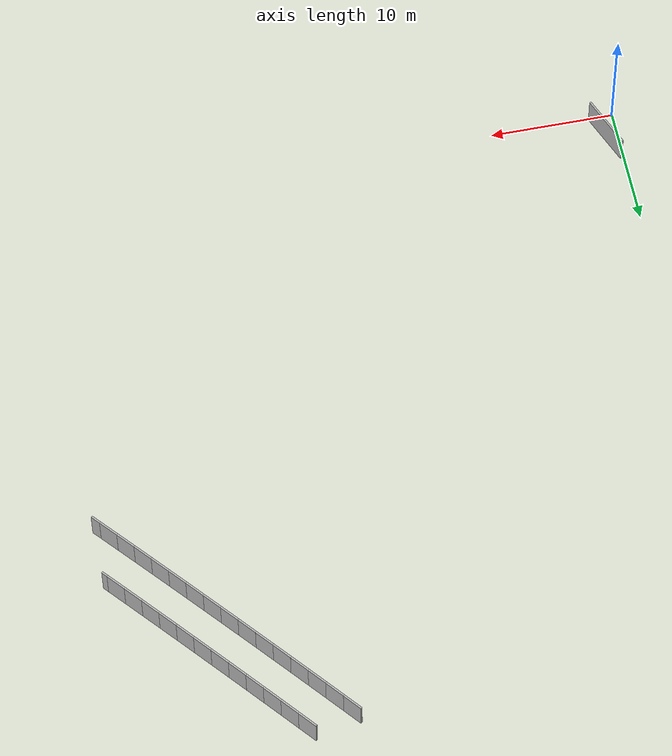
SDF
<?xml version="1.0" ?>
<sdf version="1.6">
  <model name="sps_4923">
    <pose frame="">0 0 0 0 -0 0</pose>
    <static>1</static>
    <self_collide>0</self_collide>
    <allow_auto_disable>0</allow_auto_disable>
    <link name="Wall6439">
      <kinematic>0</kinematic>
      <gravity>1</gravity>
      <self_collide>0</self_collide>
      <collision name="collision">
        <geometry>
          <box>
            <size>4.526 0.15 2.5</size>
          </box>
        </geometry>
        <pose frame="">0 0 0 0 -0 0</pose>
      </collision>
      <visual name="visual">
        <geometry>
          <box>
            <size>4.526 0.15 2.5</size>
          </box>
        </geometry>
        <pose frame="">0 0 0 0 -0 0</pose>
        <cast_shadows>1</cast_shadows>
        <transparency>0.0</transparency>
      </visual>
      <pose frame="">1.07574 2.0927 1.25 0 0 -1.18656</pose>
    </link>
    <link name="Wall6572">
      <kinematic>0</kinematic>
      <gravity>1</gravity>
      <self_collide>0</self_collide>
      <collision name="collision">
        <geometry>
          <box>
            <size>1.68608 0.15 2.5</size>
          </box>
        </geometry>
        <pose frame="">0 0 0 0 -0 0</pose>
      </collision>
      <visual name="visual">
        <geometry>
          <box>
            <size>1.68608 0.15 2.5</size>
          </box>
        </geometry>
        <pose frame="">0 0 0 0 -0 0</pose>
        <cast_shadows>1</cast_shadows>
        <transparency>0.0</transparency>
      </visual>
      <pose frame="">31.2801 48.8005 1.25 0 0 -0.878218</pose>
    </link>
    <link name="Wall6573">
      <kinematic>0</kinematic>
      <gravity>1</gravity>
      <self_collide>0</self_collide>
      <collision name="collision">
        <geometry>
          <box>
            <size>1.68623 0.15 2.5</size>
          </box>
        </geometry>
        <pose frame="">0 0 0 0 -0 0</pose>
      </collision>
      <visual name="visual">
        <geometry>
          <box>
            <size>1.68623 0.15 2.5</size>
          </box>
        </geometry>
        <pose frame="">0 0 0 0 -0 0</pose>
        <cast_shadows>1</cast_shadows>
        <transparency>0.0</transparency>
      </visual>
      <pose frame="">32.358 47.5038 1.25 0 0 -0.87641</pose>
    </link>
    <link name="Wall6574">
      <kinematic>0</kinematic>
      <gravity>1</gravity>
      <self_collide>0</self_collide>
      <collision name="collision">
        <geometry>
          <box>
            <size>1.68624 0.15 2.5</size>
          </box>
        </geometry>
        <pose frame="">0 0 0 0 -0 0</pose>
      </collision>
      <visual name="visual">
        <geometry>
          <box>
            <size>1.68624 0.15 2.5</size>
          </box>
        </geometry>
        <pose frame="">0 0 0 0 -0 0</pose>
        <cast_shadows>1</cast_shadows>
        <transparency>0.0</transparency>
      </visual>
      <pose frame="">33.4381 46.2089 1.25 0 0 -0.874765</pose>
    </link>
    <link name="Wall6575">
      <kinematic>0</kinematic>
      <gravity>1</gravity>
      <self_collide>0</self_collide>
      <collision name="collision">
        <geometry>
          <box>
            <size>1.68629 0.15 2.5</size>
          </box>
        </geometry>
        <pose frame="">0 0 0 0 -0 0</pose>
      </collision>
      <visual name="visual">
        <geometry>
          <box>
            <size>1.68629 0.15 2.5</size>
          </box>
        </geometry>
        <pose frame="">0 0 0 0 -0 0</pose>
        <cast_shadows>1</cast_shadows>
        <transparency>0.0</transparency>
      </visual>
      <pose frame="">34.5203 44.9158 1.25 0 0 -0.873092</pose>
    </link>
    <link name="Wall6576">
      <kinematic>0</kinematic>
      <gravity>1</gravity>
      <self_collide>0</self_collide>
      <collision name="collision">
        <geometry>
          <box>
            <size>1.68629 0.15 2.5</size>
          </box>
        </geometry>
        <pose frame="">0 0 0 0 -0 0</pose>
      </collision>
      <visual name="visual">
        <geometry>
          <box>
            <size>1.68629 0.15 2.5</size>
          </box>
        </geometry>
        <pose frame="">0 0 0 0 -0 0</pose>
        <cast_shadows>1</cast_shadows>
        <transparency>0.0</transparency>
      </visual>
      <pose frame="">35.6049 43.6245 1.25 0 0 -0.871345</pose>
    </link>
    <link name="Wall6577">
      <kinematic>0</kinematic>
      <gravity>1</gravity>
      <self_collide>0</self_collide>
      <collision name="collision">
        <geometry>
          <box>
            <size>1.68622 0.15 2.5</size>
          </box>
        </geometry>
        <pose frame="">0 0 0 0 -0 0</pose>
      </collision>
      <visual name="visual">
        <geometry>
          <box>
            <size>1.68622 0.15 2.5</size>
          </box>
        </geometry>
        <pose frame="">0 0 0 0 -0 0</pose>
        <cast_shadows>1</cast_shadows>
        <transparency>0.0</transparency>
      </visual>
      <pose frame="">36.6916 42.3351 1.25 0 0 -0.869653</pose>
    </link>
    <link name="Wall6578">
      <kinematic>0</kinematic>
      <gravity>1</gravity>
      <self_collide>0</self_collide>
      <collision name="collision">
        <geometry>
          <box>
            <size>1.6863 0.15 2.5</size>
          </box>
        </geometry>
        <pose frame="">0 0 0 0 -0 0</pose>
      </collision>
      <visual name="visual">
        <geometry>
          <box>
            <size>1.6863 0.15 2.5</size>
          </box>
        </geometry>
        <pose frame="">0 0 0 0 -0 0</pose>
        <cast_shadows>1</cast_shadows>
        <transparency>0.0</transparency>
      </visual>
      <pose frame="">37.7804 41.0475 1.25 0 0 -0.868082</pose>
    </link>
    <link name="Wall6579">
      <kinematic>0</kinematic>
      <gravity>1</gravity>
      <self_collide>0</self_collide>
      <collision name="collision">
        <geometry>
          <box>
            <size>1.68615 0.15 2.5</size>
          </box>
        </geometry>
        <pose frame="">0 0 0 0 -0 0</pose>
      </collision>
      <visual name="visual">
        <geometry>
          <box>
            <size>1.68615 0.15 2.5</size>
          </box>
        </geometry>
        <pose frame="">0 0 0 0 -0 0</pose>
        <cast_shadows>1</cast_shadows>
        <transparency>0.0</transparency>
      </visual>
      <pose frame="">38.8713 39.7617 1.25 0 0 -0.866344</pose>
    </link>
    <link name="Wall6580">
      <kinematic>0</kinematic>
      <gravity>1</gravity>
      <self_collide>0</self_collide>
      <collision name="collision">
        <geometry>
          <box>
            <size>1.68592 0.15 2.5</size>
          </box>
        </geometry>
        <pose frame="">0 0 0 0 -0 0</pose>
      </collision>
      <visual name="visual">
        <geometry>
          <box>
            <size>1.68592 0.15 2.5</size>
          </box>
        </geometry>
        <pose frame="">0 0 0 0 -0 0</pose>
        <cast_shadows>1</cast_shadows>
        <transparency>0.0</transparency>
      </visual>
      <pose frame="">39.9643 38.4779 1.25 0 0 -0.86466</pose>
    </link>
    <link name="Wall6581">
      <kinematic>0</kinematic>
      <gravity>1</gravity>
      <self_collide>0</self_collide>
      <collision name="collision">
        <geometry>
          <box>
            <size>1.68626 0.15 2.5</size>
          </box>
        </geometry>
        <pose frame="">0 0 0 0 -0 0</pose>
      </collision>
      <visual name="visual">
        <geometry>
          <box>
            <size>1.68626 0.15 2.5</size>
          </box>
        </geometry>
        <pose frame="">0 0 0 0 -0 0</pose>
        <cast_shadows>1</cast_shadows>
        <transparency>0.0</transparency>
      </visual>
      <pose frame="">41.0594 37.1959 1.25 0 0 -0.862975</pose>
    </link>
    <link name="Wall6582">
      <kinematic>0</kinematic>
      <gravity>1</gravity>
      <self_collide>0</self_collide>
      <collision name="collision">
        <geometry>
          <box>
            <size>1.68613 0.15 2.5</size>
          </box>
        </geometry>
        <pose frame="">0 0 0 0 -0 0</pose>
      </collision>
      <visual name="visual">
        <geometry>
          <box>
            <size>1.68613 0.15 2.5</size>
          </box>
        </geometry>
        <pose frame="">0 0 0 0 -0 0</pose>
        <cast_shadows>1</cast_shadows>
        <transparency>0.0</transparency>
      </visual>
      <pose frame="">42.1569 35.9157 1.25 0 0 -0.861287</pose>
    </link>
    <link name="Wall6583">
      <kinematic>0</kinematic>
      <gravity>1</gravity>
      <self_collide>0</self_collide>
      <collision name="collision">
        <geometry>
          <box>
            <size>1.68614 0.15 2.5</size>
          </box>
        </geometry>
        <pose frame="">0 0 0 0 -0 0</pose>
      </collision>
      <visual name="visual">
        <geometry>
          <box>
            <size>1.68614 0.15 2.5</size>
          </box>
        </geometry>
        <pose frame="">0 0 0 0 -0 0</pose>
        <cast_shadows>1</cast_shadows>
        <transparency>0.0</transparency>
      </visual>
      <pose frame="">43.2564 34.6374 1.25 0 0 -0.859618</pose>
    </link>
    <link name="Wall6584">
      <kinematic>0</kinematic>
      <gravity>1</gravity>
      <self_collide>0</self_collide>
      <collision name="collision">
        <geometry>
          <box>
            <size>1.68632 0.15 2.5</size>
          </box>
        </geometry>
        <pose frame="">0 0 0 0 -0 0</pose>
      </collision>
      <visual name="visual">
        <geometry>
          <box>
            <size>1.68632 0.15 2.5</size>
          </box>
        </geometry>
        <pose frame="">0 0 0 0 -0 0</pose>
        <cast_shadows>1</cast_shadows>
        <transparency>0.0</transparency>
      </visual>
      <pose frame="">44.3581 33.3608 1.25 0 0 -0.857993</pose>
    </link>
    <link name="Wall6585">
      <kinematic>0</kinematic>
      <gravity>1</gravity>
      <self_collide>0</self_collide>
      <collision name="collision">
        <geometry>
          <box>
            <size>1.68629 0.15 2.5</size>
          </box>
        </geometry>
        <pose frame="">0 0 0 0 -0 0</pose>
      </collision>
      <visual name="visual">
        <geometry>
          <box>
            <size>1.68629 0.15 2.5</size>
          </box>
        </geometry>
        <pose frame="">0 0 0 0 -0 0</pose>
        <cast_shadows>1</cast_shadows>
        <transparency>0.0</transparency>
      </visual>
      <pose frame="">45.4619 32.086 1.25 0 0 -0.85625</pose>
    </link>
    <link name="Wall6586">
      <kinematic>0</kinematic>
      <gravity>1</gravity>
      <self_collide>0</self_collide>
      <collision name="collision">
        <geometry>
          <box>
            <size>1.68607 0.15 2.5</size>
          </box>
        </geometry>
        <pose frame="">0 0 0 0 -0 0</pose>
      </collision>
      <visual name="visual">
        <geometry>
          <box>
            <size>1.68607 0.15 2.5</size>
          </box>
        </geometry>
        <pose frame="">0 0 0 0 -0 0</pose>
        <cast_shadows>1</cast_shadows>
        <transparency>0.0</transparency>
      </visual>
      <pose frame="">46.5682 30.8135 1.25 0 0 -0.854078</pose>
    </link>
    <link name="Wall6587">
      <kinematic>0</kinematic>
      <gravity>1</gravity>
      <self_collide>0</self_collide>
      <collision name="collision">
        <geometry>
          <box>
            <size>0.835422 0.15 2.5</size>
          </box>
        </geometry>
        <pose frame="">0 0 0 0 -0 0</pose>
      </collision>
      <visual name="visual">
        <geometry>
          <box>
            <size>0.835422 0.15 2.5</size>
          </box>
        </geometry>
        <pose frame="">0 0 0 0 -0 0</pose>
        <cast_shadows>1</cast_shadows>
        <transparency>0.0</transparency>
      </visual>
      <pose frame="">47.3968 29.8633 1.25 0 0 -0.85276</pose>
    </link>
    <link name="Wall9156">
      <kinematic>0</kinematic>
      <gravity>1</gravity>
      <self_collide>0</self_collide>
      <collision name="collision">
        <geometry>
          <box>
            <size>0.523454 0.15 2.5</size>
          </box>
        </geometry>
        <pose frame="">0 0 0 0 -0 0</pose>
      </collision>
      <visual name="visual">
        <geometry>
          <box>
            <size>0.523454 0.15 2.5</size>
          </box>
        </geometry>
        <pose frame="">0 0 0 0 -0 0</pose>
        <cast_shadows>1</cast_shadows>
        <transparency>0.0</transparency>
      </visual>
      <pose frame="">47.5001 34.6202 1.25 0 -0 2.28539</pose>
    </link>
    <link name="Wall9157">
      <kinematic>0</kinematic>
      <gravity>1</gravity>
      <self_collide>0</self_collide>
      <collision name="collision">
        <geometry>
          <box>
            <size>1.68081 0.15 2.5</size>
          </box>
        </geometry>
        <pose frame="">0 0 0 0 -0 0</pose>
      </collision>
      <visual name="visual">
        <geometry>
          <box>
            <size>1.68081 0.15 2.5</size>
          </box>
        </geometry>
        <pose frame="">0 0 0 0 -0 0</pose>
        <cast_shadows>1</cast_shadows>
        <transparency>0.0</transparency>
      </visual>
      <pose frame="">46.779 35.4536 1.25 0 -0 2.28375</pose>
    </link>
    <link name="Wall9158">
      <kinematic>0</kinematic>
      <gravity>1</gravity>
      <self_collide>0</self_collide>
      <collision name="collision">
        <geometry>
          <box>
            <size>1.68089 0.15 2.5</size>
          </box>
        </geometry>
        <pose frame="">0 0 0 0 -0 0</pose>
      </collision>
      <visual name="visual">
        <geometry>
          <box>
            <size>1.68089 0.15 2.5</size>
          </box>
        </geometry>
        <pose frame="">0 0 0 0 -0 0</pose>
        <cast_shadows>1</cast_shadows>
        <transparency>0.0</transparency>
      </visual>
      <pose frame="">45.6807 36.726 1.25 0 -0 2.28203</pose>
    </link>
    <link name="Wall9159">
      <kinematic>0</kinematic>
      <gravity>1</gravity>
      <self_collide>0</self_collide>
      <collision name="collision">
        <geometry>
          <box>
            <size>1.68081 0.15 2.5</size>
          </box>
        </geometry>
        <pose frame="">0 0 0 0 -0 0</pose>
      </collision>
      <visual name="visual">
        <geometry>
          <box>
            <size>1.68081 0.15 2.5</size>
          </box>
        </geometry>
        <pose frame="">0 0 0 0 -0 0</pose>
        <cast_shadows>1</cast_shadows>
        <transparency>0.0</transparency>
      </visual>
      <pose frame="">44.5846 38.0003 1.25 0 -0 2.2803</pose>
    </link>
    <link name="Wall9160">
      <kinematic>0</kinematic>
      <gravity>1</gravity>
      <self_collide>0</self_collide>
      <collision name="collision">
        <geometry>
          <box>
            <size>1.68076 0.15 2.5</size>
          </box>
        </geometry>
        <pose frame="">0 0 0 0 -0 0</pose>
      </collision>
      <visual name="visual">
        <geometry>
          <box>
            <size>1.68076 0.15 2.5</size>
          </box>
        </geometry>
        <pose frame="">0 0 0 0 -0 0</pose>
        <cast_shadows>1</cast_shadows>
        <transparency>0.0</transparency>
      </visual>
      <pose frame="">43.4907 39.2764 1.25 0 -0 2.27865</pose>
    </link>
    <link name="Wall9161">
      <kinematic>0</kinematic>
      <gravity>1</gravity>
      <self_collide>0</self_collide>
      <collision name="collision">
        <geometry>
          <box>
            <size>1.68087 0.15 2.5</size>
          </box>
        </geometry>
        <pose frame="">0 0 0 0 -0 0</pose>
      </collision>
      <visual name="visual">
        <geometry>
          <box>
            <size>1.68087 0.15 2.5</size>
          </box>
        </geometry>
        <pose frame="">0 0 0 0 -0 0</pose>
        <cast_shadows>1</cast_shadows>
        <transparency>0.0</transparency>
      </visual>
      <pose frame="">42.3989 40.5544 1.25 0 -0 2.27682</pose>
    </link>
    <link name="Wall9162">
      <kinematic>0</kinematic>
      <gravity>1</gravity>
      <self_collide>0</self_collide>
      <collision name="collision">
        <geometry>
          <box>
            <size>1.68077 0.15 2.5</size>
          </box>
        </geometry>
        <pose frame="">0 0 0 0 -0 0</pose>
      </collision>
      <visual name="visual">
        <geometry>
          <box>
            <size>1.68077 0.15 2.5</size>
          </box>
        </geometry>
        <pose frame="">0 0 0 0 -0 0</pose>
        <cast_shadows>1</cast_shadows>
        <transparency>0.0</transparency>
      </visual>
      <pose frame="">41.3093 41.8342 1.25 0 -0 2.27535</pose>
    </link>
    <link name="Wall9163">
      <kinematic>0</kinematic>
      <gravity>1</gravity>
      <self_collide>0</self_collide>
      <collision name="collision">
        <geometry>
          <box>
            <size>1.68084 0.15 2.5</size>
          </box>
        </geometry>
        <pose frame="">0 0 0 0 -0 0</pose>
      </collision>
      <visual name="visual">
        <geometry>
          <box>
            <size>1.68084 0.15 2.5</size>
          </box>
        </geometry>
        <pose frame="">0 0 0 0 -0 0</pose>
        <cast_shadows>1</cast_shadows>
        <transparency>0.0</transparency>
      </visual>
      <pose frame="">40.2219 43.1158 1.25 0 -0 2.27355</pose>
    </link>
    <link name="Wall9164">
      <kinematic>0</kinematic>
      <gravity>1</gravity>
      <self_collide>0</self_collide>
      <collision name="collision">
        <geometry>
          <box>
            <size>1.68056 0.15 2.5</size>
          </box>
        </geometry>
        <pose frame="">0 0 0 0 -0 0</pose>
      </collision>
      <visual name="visual">
        <geometry>
          <box>
            <size>1.68056 0.15 2.5</size>
          </box>
        </geometry>
        <pose frame="">0 0 0 0 -0 0</pose>
        <cast_shadows>1</cast_shadows>
        <transparency>0.0</transparency>
      </visual>
      <pose frame="">39.1366 44.3992 1.25 0 -0 2.27189</pose>
    </link>
    <link name="Wall9165">
      <kinematic>0</kinematic>
      <gravity>1</gravity>
      <self_collide>0</self_collide>
      <collision name="collision">
        <geometry>
          <box>
            <size>1.68076 0.15 2.5</size>
          </box>
        </geometry>
        <pose frame="">0 0 0 0 -0 0</pose>
      </collision>
      <visual name="visual">
        <geometry>
          <box>
            <size>1.68076 0.15 2.5</size>
          </box>
        </geometry>
        <pose frame="">0 0 0 0 -0 0</pose>
        <cast_shadows>1</cast_shadows>
        <transparency>0.0</transparency>
      </visual>
      <pose frame="">38.0536 45.6844 1.25 0 -0 2.27017</pose>
    </link>
    <link name="Wall9166">
      <kinematic>0</kinematic>
      <gravity>1</gravity>
      <self_collide>0</self_collide>
      <collision name="collision">
        <geometry>
          <box>
            <size>1.68105 0.15 2.5</size>
          </box>
        </geometry>
        <pose frame="">0 0 0 0 -0 0</pose>
      </collision>
      <visual name="visual">
        <geometry>
          <box>
            <size>1.68105 0.15 2.5</size>
          </box>
        </geometry>
        <pose frame="">0 0 0 0 -0 0</pose>
        <cast_shadows>1</cast_shadows>
        <transparency>0.0</transparency>
      </visual>
      <pose frame="">36.9726 46.9716 1.25 0 -0 2.26851</pose>
    </link>
    <link name="Wall9167">
      <kinematic>0</kinematic>
      <gravity>1</gravity>
      <self_collide>0</self_collide>
      <collision name="collision">
        <geometry>
          <box>
            <size>1.6807 0.15 2.5</size>
          </box>
        </geometry>
        <pose frame="">0 0 0 0 -0 0</pose>
      </collision>
      <visual name="visual">
        <geometry>
          <box>
            <size>1.6807 0.15 2.5</size>
          </box>
        </geometry>
        <pose frame="">0 0 0 0 -0 0</pose>
        <cast_shadows>1</cast_shadows>
        <transparency>0.0</transparency>
      </visual>
      <pose frame="">35.8939 48.2606 1.25 0 -0 2.26679</pose>
    </link>
    <link name="Wall9168">
      <kinematic>0</kinematic>
      <gravity>1</gravity>
      <self_collide>0</self_collide>
      <collision name="collision">
        <geometry>
          <box>
            <size>1.68085 0.15 2.5</size>
          </box>
        </geometry>
        <pose frame="">0 0 0 0 -0 0</pose>
      </collision>
      <visual name="visual">
        <geometry>
          <box>
            <size>1.68085 0.15 2.5</size>
          </box>
        </geometry>
        <pose frame="">0 0 0 0 -0 0</pose>
        <cast_shadows>1</cast_shadows>
        <transparency>0.0</transparency>
      </visual>
      <pose frame="">34.8173 49.5513 1.25 0 -0 2.2652</pose>
    </link>
  </model>
</sdf>
